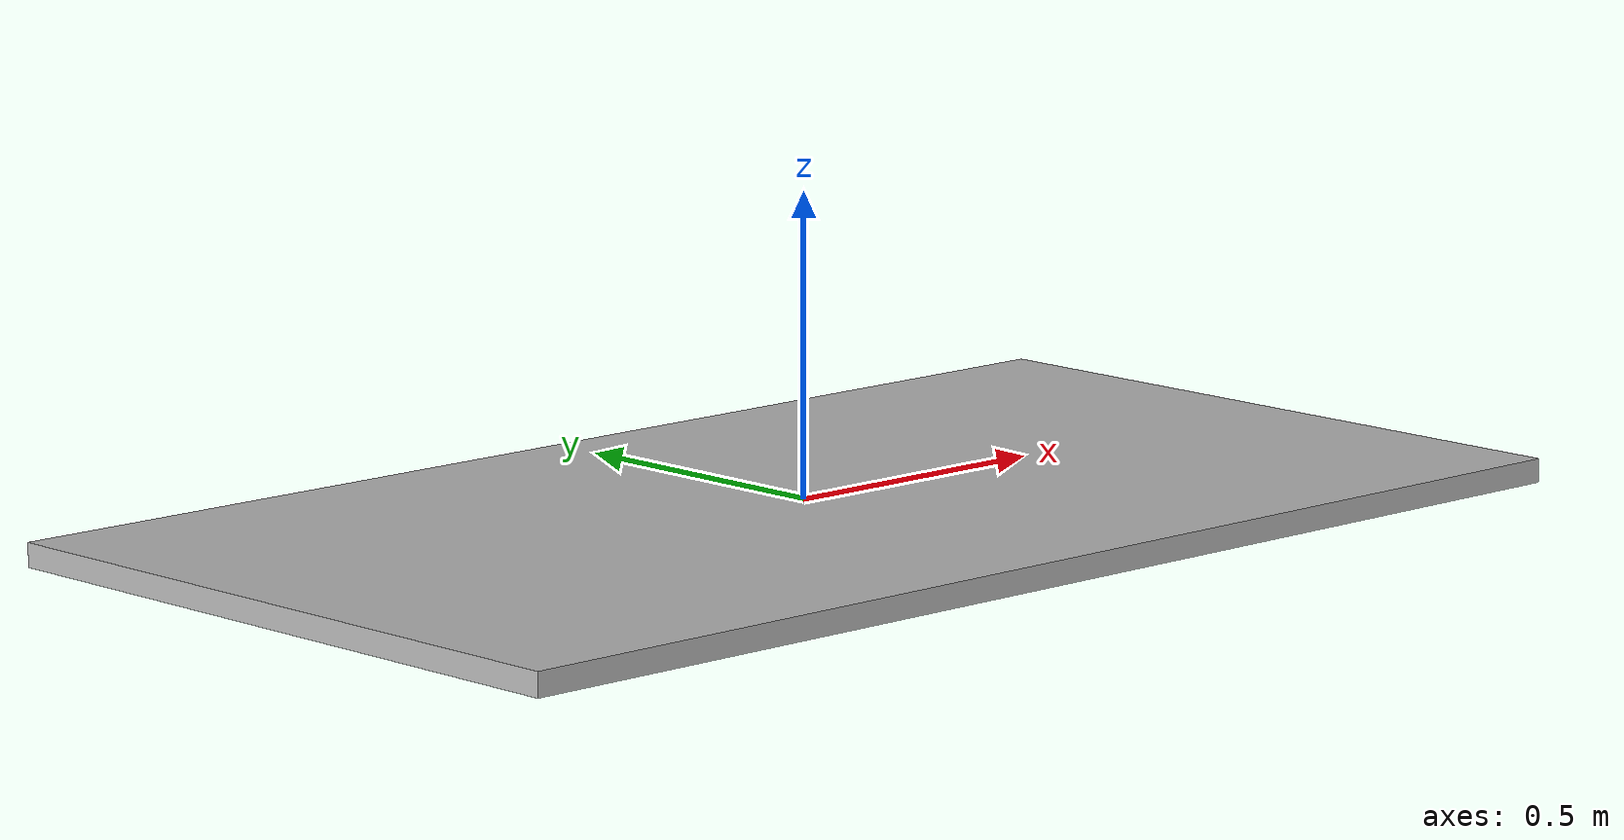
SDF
<?xml version="1.0" ?>
<sdf version="1.5">
  <model name="floor_2.2_concrete">
    <static>true</static>
    <link name="link">
      <pose>0 0 -0.02 0 0 0</pose>
      <collision name="collision">
        <geometry>
          <box>
            <size>2.2 1.2 0.04</size>
          </box>
        </geometry>
      </collision>
      <visual name="visual">
        <geometry>
          <box>
            <size>2.2 1.2 0.04</size>
          </box>
        </geometry>
        <material>
          <script>
            <uri>model://floor_2.2_concrete/materials/scripts</uri>
            <uri>model://floor_2.2_concrete/materials/textures</uri>
            <name>vrc/floor_2.2_concrete</name>
          </script>
        </material>
      </visual>
    </link>
  </model>
</sdf>
